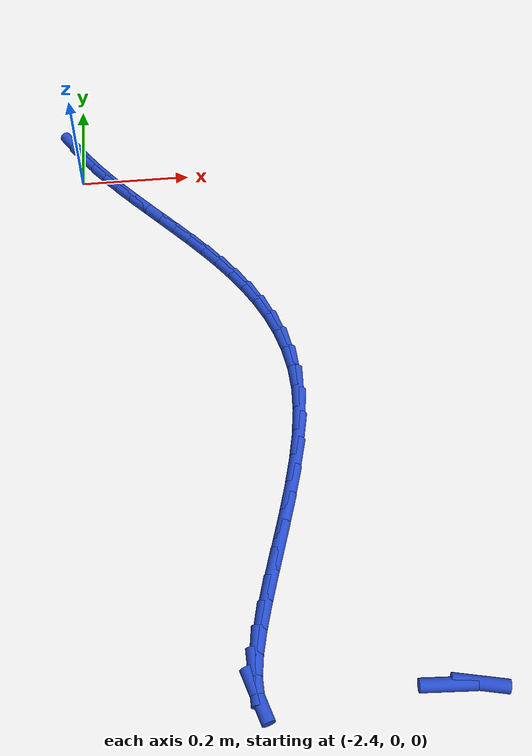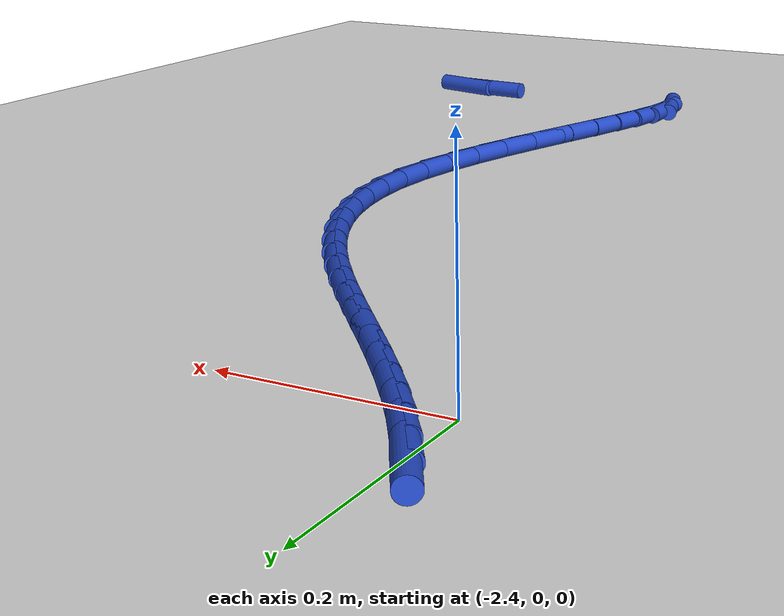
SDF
<sdf version="1.6">
 <world name="default">
  <model name="ground_plane">
   <static>1</static>
   <link name="link">
    <collision name="collision">
     <geometry><plane><normal>0 0 1</normal><size>100 100</size></plane></geometry>
     <surface><friction><ode><mu>100</mu><mu2>50</mu2></ode></friction></surface>
    </collision>
    <visual name="visual">
     <cast_shadows>0</cast_shadows>
     <geometry><plane><normal>0 0 1</normal><size>100 100</size></plane></geometry>
     <material>
      <script><uri>file://media/materials/scripts/gazebo.material</uri><name>Gazebo/WhiteGlow</name></script>
     </material>
    </visual>
   </link>
  </model>
  <model name="line">
   <link name="link_141">
    <pose>-2.4126332560042845 0.0893693755161786 0.01 0 1.57 -1.0139928894322177</pose>
    <collision name="collision">
     <geometry><cylinder><radius>0.01</radius><length>0.08</length></cylinder></geometry>
    </collision>
    <visual name="visual">
     <material>
      <script><name>Gazebo/Blue</name><uri>file://media/materials/scripts/gazebo.material</uri></script>
     </material>
     <geometry><cylinder><radius>0.01</radius><length>0.08</length></cylinder></geometry>
    </visual>
   </link>
   <link name="link_142">
    <pose>-2.3932833715309885 0.05828549361957406 0.01 0 1.57 -0.9645112765348024</pose>
    <collision name="collision">
     <geometry><cylinder><radius>0.01</radius><length>0.08</length></cylinder></geometry>
    </collision>
    <visual name="visual">
     <material>
      <script><name>Gazebo/Blue</name><uri>file://media/materials/scripts/gazebo.material</uri></script>
     </material>
     <geometry><cylinder><radius>0.01</radius><length>0.08</length></cylinder></geometry>
    </visual>
   </link>
   <link name="link_143">
    <pose>-2.3724822637177243 0.028286931755439098 0.01 0 1.57 -0.9232147268905038</pose>
    <collision name="collision">
     <geometry><cylinder><radius>0.01</radius><length>0.08</length></cylinder></geometry>
    </collision>
    <visual name="visual">
     <material>
      <script><name>Gazebo/Blue</name><uri>file://media/materials/scripts/gazebo.material</uri></script>
     </material>
     <geometry><cylinder><radius>0.01</radius><length>0.08</length></cylinder></geometry>
    </visual>
   </link>
   <link name="link_144">
    <pose>-2.3504566504050377 -0.0008322485554523619 0.01 0 1.57 -0.8903621938102168</pose>
    <collision name="collision">
     <geometry><cylinder><radius>0.01</radius><length>0.08</length></cylinder></geometry>
    </collision>
    <visual name="visual">
     <material>
      <script><name>Gazebo/Blue</name><uri>file://media/materials/scripts/gazebo.material</uri></script>
     </material>
     <geometry><cylinder><radius>0.01</radius><length>0.08</length></cylinder></geometry>
    </visual>
   </link>
   <link name="link_145">
    <pose>-2.3274332494334726 -0.029277985792330007 0.01 0 1.57 -0.8660331319921071</pose>
    <collision name="collision">
     <geometry><cylinder><radius>0.01</radius><length>0.08</length></cylinder></geometry>
    </collision>
    <visual name="visual">
     <material>
      <script><name>Gazebo/Blue</name><uri>file://media/materials/scripts/gazebo.material</uri></script>
     </material>
     <geometry><cylinder><radius>0.01</radius><length>0.08</length></cylinder></geometry>
    </visual>
   </link>
   <link name="link_146">
    <pose>-2.3036387786435752 -0.05725621843442003 0.01 0 1.57 -0.8501966084263985</pose>
    <collision name="collision">
     <geometry><cylinder><radius>0.01</radius><length>0.08</length></cylinder></geometry>
    </collision>
    <visual name="visual">
     <material>
      <script><name>Gazebo/Blue</name><uri>file://media/materials/scripts/gazebo.material</uri></script>
     </material>
     <geometry><cylinder><radius>0.01</radius><length>0.08</length></cylinder></geometry>
    </visual>
   </link>
   <link name="link_147">
    <pose>-2.279299955875891 -0.08497288496095202 0.01 0 1.57 -0.8427649246435608</pose>
    <collision name="collision">
     <geometry><cylinder><radius>0.01</radius><length>0.08</length></cylinder></geometry>
    </collision>
    <visual name="visual">
     <material>
      <script><name>Gazebo/Blue</name><uri>file://media/materials/scripts/gazebo.material</uri></script>
     </material>
     <geometry><cylinder><radius>0.01</radius><length>0.08</length></cylinder></geometry>
    </visual>
   </link>
   <link name="link_148">
    <pose>-2.254643498970965 -0.11263392385115223 0.01 0 1.57 -0.8436285102216247</pose>
    <collision name="collision">
     <geometry><cylinder><radius>0.01</radius><length>0.08</length></cylinder></geometry>
    </collision>
    <visual name="visual">
     <material>
      <script><name>Gazebo/Blue</name><uri>file://media/materials/scripts/gazebo.material</uri></script>
     </material>
     <geometry><cylinder><radius>0.01</radius><length>0.08</length></cylinder></geometry>
    </visual>
   </link>
   <link name="link_149">
    <pose>-2.2298961257693426 -0.14044527358425027 0.01 0 1.57 -0.8527679280731997</pose>
    <collision name="collision">
     <geometry><cylinder><radius>0.01</radius><length>0.08</length></cylinder></geometry>
    </collision>
    <visual name="visual">
     <material>
      <script><name>Gazebo/Blue</name><uri>file://media/materials/scripts/gazebo.material</uri></script>
     </material>
     <geometry><cylinder><radius>0.01</radius><length>0.08</length></cylinder></geometry>
    </visual>
   </link>
   <link name="link_150">
    <pose>-2.205290507810533 -0.16861150723613227 0.01 0 1.57 -0.8716118794930486</pose>
    <collision name="collision">
     <geometry><cylinder><radius>0.01</radius><length>0.08</length></cylinder></geometry>
    </collision>
    <visual name="visual">
     <material>
      <script><name>Gazebo/Blue</name><uri>file://media/materials/scripts/gazebo.material</uri></script>
     </material>
     <geometry><cylinder><radius>0.01</radius><length>0.08</length></cylinder></geometry>
    </visual>
   </link>
   <link name="link_151">
    <pose>-2.1811533461255435 -0.19731563344307843 0.01 0 1.57 -0.9014541047199175</pose>
    <collision name="collision">
     <geometry><cylinder><radius>0.01</radius><length>0.08</length></cylinder></geometry>
    </collision>
    <visual name="visual">
     <material>
      <script><name>Gazebo/Blue</name><uri>file://media/materials/scripts/gazebo.material</uri></script>
     </material>
     <geometry><cylinder><radius>0.01</radius><length>0.08</length></cylinder></geometry>
    </visual>
   </link>
   <link name="link_152">
    <pose>-2.1578863410936435 -0.2267234607173383 0.01 0 1.57 -0.9425721356625262</pose>
    <collision name="collision">
     <geometry><cylinder><radius>0.01</radius><length>0.08</length></cylinder></geometry>
    </collision>
    <visual name="visual">
     <material>
      <script><name>Gazebo/Blue</name><uri>file://media/materials/scripts/gazebo.material</uri></script>
     </material>
     <geometry><cylinder><radius>0.01</radius><length>0.08</length></cylinder></geometry>
    </visual>
   </link>
   <link name="link_153">
    <pose>-2.13589327965181 -0.2570003190463159 0.01 0 1.57 -0.9952514035073557</pose>
    <collision name="collision">
     <geometry><cylinder><radius>0.01</radius><length>0.08</length></cylinder></geometry>
    </collision>
    <visual name="visual">
     <material>
      <script><name>Gazebo/Blue</name><uri>file://media/materials/scripts/gazebo.material</uri></script>
     </material>
     <geometry><cylinder><radius>0.01</radius><length>0.08</length></cylinder></geometry>
    </visual>
   </link>
   <link name="link_154">
    <pose>-2.115577948737017 -0.288311538417419 0.01 0 1.57 -1.0596595398614028</pose>
    <collision name="collision">
     <geometry><cylinder><radius>0.01</radius><length>0.08</length></cylinder></geometry>
    </collision>
    <visual name="visual">
     <material>
      <script><name>Gazebo/Blue</name><uri>file://media/materials/scripts/gazebo.material</uri></script>
     </material>
     <geometry><cylinder><radius>0.01</radius><length>0.08</length></cylinder></geometry>
    </visual>
   </link>
   <link name="link_155">
    <pose>-2.0973441352862423 -0.32082244881805166 0.01 0 1.57 -1.1356308663805257</pose>
    <collision name="collision">
     <geometry><cylinder><radius>0.01</radius><length>0.08</length></cylinder></geometry>
    </collision>
    <visual name="visual">
     <material>
      <script><name>Gazebo/Blue</name><uri>file://media/materials/scripts/gazebo.material</uri></script>
     </material>
     <geometry><cylinder><radius>0.01</radius><length>0.08</length></cylinder></geometry>
    </visual>
   </link>
   <link name="link_156">
    <pose>-2.0815956262364588 -0.35469838023562184 0.01 0 1.57 -1.2224143733635353</pose>
    <collision name="collision">
     <geometry><cylinder><radius>0.01</radius><length>0.08</length></cylinder></geometry>
    </collision>
    <visual name="visual">
     <material>
      <script><name>Gazebo/Blue</name><uri>file://media/materials/scripts/gazebo.material</uri></script>
     </material>
     <geometry><cylinder><radius>0.01</radius><length>0.08</length></cylinder></geometry>
    </visual>
   </link>
   <link name="link_157">
    <pose>-2.068736208524645 -0.39010466265753335 0.01 0 1.57 -1.3184482841373848</pose>
    <collision name="collision">
     <geometry><cylinder><radius>0.01</radius><length>0.08</length></cylinder></geometry>
    </collision>
    <visual name="visual">
     <material>
      <script><name>Gazebo/Blue</name><uri>file://media/materials/scripts/gazebo.material</uri></script>
     </material>
     <geometry><cylinder><radius>0.01</radius><length>0.08</length></cylinder></geometry>
    </visual>
   </link>
   <link name="link_158">
    <pose>-2.059169669087775 -0.4272066260711944 0.01 0 1.57 -1.421268179956957</pose>
    <collision name="collision">
     <geometry><cylinder><radius>0.01</radius><length>0.08</length></cylinder></geometry>
    </collision>
    <visual name="visual">
     <material>
      <script><name>Gazebo/Blue</name><uri>file://media/materials/scripts/gazebo.material</uri></script>
     </material>
     <geometry><cylinder><radius>0.01</radius><length>0.08</length></cylinder></geometry>
    </visual>
   </link>
   <link name="link_159">
    <pose>-2.0532997948628253 -0.4661696004640084 0.01 0 1.57 -1.527655225226845</pose>
    <collision name="collision">
     <geometry><cylinder><radius>0.01</radius><length>0.08</length></cylinder></geometry>
    </collision>
    <visual name="visual">
     <material>
      <script><name>Gazebo/Blue</name><uri>file://media/materials/scripts/gazebo.material</uri></script>
     </material>
     <geometry><cylinder><radius>0.01</radius><length>0.08</length></cylinder></geometry>
    </visual>
   </link>
   <link name="link_160">
    <pose>-2.0515303727867704 -0.5071589158233826 0.01 0 1.57 1.5081669257976111</pose>
    <collision name="collision">
     <geometry><cylinder><radius>0.01</radius><length>0.08</length></cylinder></geometry>
    </collision>
    <visual name="visual">
     <material>
      <script><name>Gazebo/Blue</name><uri>file://media/materials/scripts/gazebo.material</uri></script>
     </material>
     <geometry><cylinder><radius>0.01</radius><length>0.08</length></cylinder></geometry>
    </visual>
   </link>
   <link name="link_161">
    <pose>-2.054237128751569 -0.5503210084666069 0.01 0 1.57 1.418206957401507</pose>
    <collision name="collision">
     <geometry><cylinder><radius>0.01</radius><length>0.08</length></cylinder></geometry>
    </collision>
    <visual name="visual">
     <material>
      <script><name>Gazebo/Blue</name><uri>file://media/materials/scripts/gazebo.material</uri></script>
     </material>
     <geometry><cylinder><radius>0.01</radius><length>0.08</length></cylinder></geometry>
    </visual>
   </link>
   <link name="link_162">
    <pose>-2.061166279195291 -0.5953784622154651 0.01 0 1.57 1.3521781899650729</pose>
    <collision name="collision">
     <geometry><cylinder><radius>0.01</radius><length>0.08</length></cylinder></geometry>
    </collision>
    <visual name="visual">
     <material>
      <script><name>Gazebo/Blue</name><uri>file://media/materials/scripts/gazebo.material</uri></script>
     </material>
     <geometry><cylinder><radius>0.01</radius><length>0.08</length></cylinder></geometry>
    </visual>
   </link>
   <link name="link_163">
    <pose>-2.071443236818244 -0.6416358700071867 0.01 0 1.57 1.305033571946934</pose>
    <collision name="collision">
     <geometry><cylinder><radius>0.01</radius><length>0.08</length></cylinder></geometry>
    </collision>
    <visual name="visual">
     <material>
      <script><name>Gazebo/Blue</name><uri>file://media/materials/scripts/gazebo.material</uri></script>
     </material>
     <geometry><cylinder><radius>0.01</radius><length>0.08</length></cylinder></geometry>
    </visual>
   </link>
   <link name="link_164">
    <pose>-2.0841670945247914 -0.6883801035023376 0.01 0 1.57 1.2731490930360847</pose>
    <collision name="collision">
     <geometry><cylinder><radius>0.01</radius><length>0.08</length></cylinder></geometry>
    </collision>
    <visual name="visual">
     <material>
      <script><name>Gazebo/Blue</name><uri>file://media/materials/scripts/gazebo.material</uri></script>
     </material>
     <geometry><cylinder><radius>0.01</radius><length>0.08</length></cylinder></geometry>
    </visual>
   </link>
   <link name="link_165">
    <pose>-2.098436945219297 -0.7348980343614878 0.01 0 1.57 1.2545431632762436</pose>
    <collision name="collision">
     <geometry><cylinder><radius>0.01</radius><length>0.08</length></cylinder></geometry>
    </collision>
    <visual name="visual">
     <material>
      <script><name>Gazebo/Blue</name><uri>file://media/materials/scripts/gazebo.material</uri></script>
     </material>
     <geometry><cylinder><radius>0.01</radius><length>0.08</length></cylinder></geometry>
    </visual>
   </link>
   <link name="link_166">
    <pose>-2.1133518818061234 -0.7804765342452032 0.01 0 1.57 1.2486947299591102</pose>
    <collision name="collision">
     <geometry><cylinder><radius>0.01</radius><length>0.08</length></cylinder></geometry>
    </collision>
    <visual name="visual">
     <material>
      <script><name>Gazebo/Blue</name><uri>file://media/materials/scripts/gazebo.material</uri></script>
     </material>
     <geometry><cylinder><radius>0.01</radius><length>0.08</length></cylinder></geometry>
    </visual>
   </link>
   <link name="link_167">
    <pose>-2.128010997189637 -0.8244024748140549 0.01 0 1.57 1.2566666097125423</pose>
    <collision name="collision">
     <geometry><cylinder><radius>0.01</radius><length>0.08</length></cylinder></geometry>
    </collision>
    <visual name="visual">
     <material>
      <script><name>Gazebo/Blue</name><uri>file://media/materials/scripts/gazebo.material</uri></script>
     </material>
     <geometry><cylinder><radius>0.01</radius><length>0.08</length></cylinder></geometry>
    </visual>
   </link>
   <link name="link_168">
    <pose>-2.1415133842741976 -0.8659627277286076 0.01 0 1.57 1.2817176672454536</pose>
    <collision name="collision">
     <geometry><cylinder><radius>0.01</radius><length>0.08</length></cylinder></geometry>
    </collision>
    <visual name="visual">
     <material>
      <script><name>Gazebo/Blue</name><uri>file://media/materials/scripts/gazebo.material</uri></script>
     </material>
     <geometry><cylinder><radius>0.01</radius><length>0.08</length></cylinder></geometry>
    </visual>
   </link>
   <link name="link_169">
    <pose>-2.1529581359641723 -0.9044441646494329 0.01 0 1.57 1.3308749056083424</pose>
    <collision name="collision">
     <geometry><cylinder><radius>0.01</radius><length>0.08</length></cylinder></geometry>
    </collision>
    <visual name="visual">
     <material>
      <script><name>Gazebo/Blue</name><uri>file://media/materials/scripts/gazebo.material</uri></script>
     </material>
     <geometry><cylinder><radius>0.01</radius><length>0.08</length></cylinder></geometry>
    </visual>
   </link>
   <link name="link_170">
    <pose>-2.1614443451639223 -0.9391336572370957 0.01 0 1.57 1.4186971397893</pose>
    <collision name="collision">
     <geometry><cylinder><radius>0.01</radius><length>0.08</length></cylinder></geometry>
    </collision>
    <visual name="visual">
     <material>
      <script><name>Gazebo/Blue</name><uri>file://media/materials/scripts/gazebo.material</uri></script>
     </material>
     <geometry><cylinder><radius>0.01</radius><length>0.08</length></cylinder></geometry>
    </visual>
   </link>
   <link name="link_171">
    <pose>-2.166071104777813 -0.9693180771521661 0.01 0 1.57 -1.5654452645059393</pose>
    <collision name="collision">
     <geometry><cylinder><radius>0.01</radius><length>0.08</length></cylinder></geometry>
    </collision>
    <visual name="visual">
     <material>
      <script><name>Gazebo/Blue</name><uri>file://media/materials/scripts/gazebo.material</uri></script>
     </material>
     <geometry><cylinder><radius>0.01</radius><length>0.08</length></cylinder></geometry>
    </visual>
   </link>
   <link name="link_172">
    <pose>-2.165937507710207 -0.9942842960552125 0.01 0 1.57 -1.2752769461726619</pose>
    <collision name="collision">
     <geometry><cylinder><radius>0.01</radius><length>0.08</length></cylinder></geometry>
    </collision>
    <visual name="visual">
     <material>
      <script><name>Gazebo/Blue</name><uri>file://media/materials/scripts/gazebo.material</uri></script>
     </material>
     <geometry><cylinder><radius>0.01</radius><length>0.08</length></cylinder></geometry>
    </visual>
   </link>
   <link name="link_181">
    <pose>-1.907297997453285 -1.0028246578472297 0.01 0 1.57 -0.05385594635294256</pose>
    <collision name="collision">
     <geometry><cylinder><radius>0.01</radius><length>0.08</length></cylinder></geometry>
    </collision>
    <visual name="visual">
     <material>
      <script><name>Gazebo/Blue</name><uri>file://media/materials/scripts/gazebo.material</uri></script>
     </material>
     <geometry><cylinder><radius>0.01</radius><length>0.08</length></cylinder></geometry>
    </visual>
   </link>
   <link name="link_182">
    <pose>-1.8632269962728394 -1.0052004407235389 0.01 0 1.57 -0.2109334031204956</pose>
    <collision name="collision">
     <geometry><cylinder><radius>0.01</radius><length>0.08</length></cylinder></geometry>
    </collision>
    <visual name="visual">
     <material>
      <script><name>Gazebo/Blue</name><uri>file://media/materials/scripts/gazebo.material</uri></script>
     </material>
     <geometry><cylinder><radius>0.01</radius><length>0.08</length></cylinder></geometry>
    </visual>
   </link>
  </model>
 </world>
</sdf>
